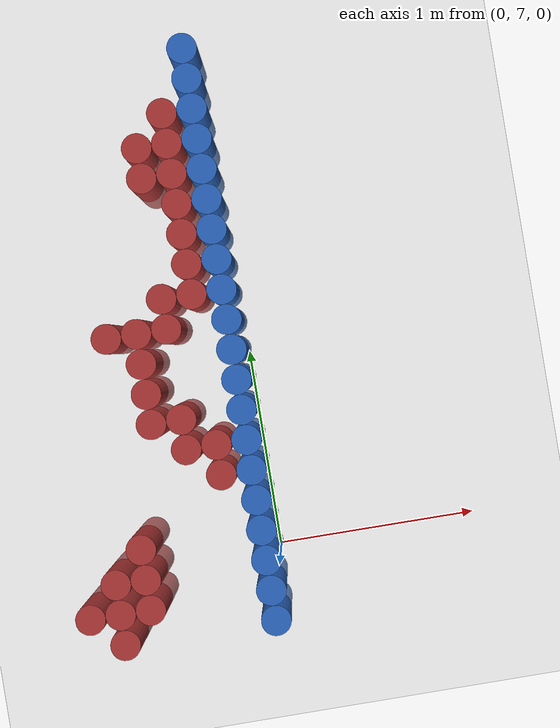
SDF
<sdf version="1.6">
 <world name="default">
  <model name="ground_plane">
   <static>1</static>
   <link name="link">
    <collision name="collision">
     <geometry><plane><normal>0 0 1</normal><size>100 100</size></plane></geometry>
     <surface><friction><ode><mu>100</mu><mu2>50</mu2></ode></friction></surface>
    </collision>
    <visual name="visual">
     <cast_shadows>0</cast_shadows>
     <geometry><plane><normal>0 0 1</normal><size>100 100</size></plane></geometry>
     <material>
      <script><uri>file://media/materials/scripts/gazebo.material</uri><name>Gazebo/Grey</name></script>
     </material>
    </visual>
   </link>
  </model>
  <model name="unit_cylinder_215">
   <static>1</static>
   <pose>-0.975000 6.825000 0.000000 0.000000 0.000000 0.000000</pose>
   <link name="link">
    <inertial>
     <mass>1</mass>
     <inertia><ixx>0.145833</ixx><ixy>0</ixy><ixz>0</ixz><iyy>0.145833</iyy><iyz>0</iyz><izz>0.125</izz></inertia>
    </inertial>
    <collision name="collision">
     <geometry><cylinder><radius>0.075000</radius><length>1</length></cylinder></geometry>
    </collision>
    <visual name="visual">
     <geometry><cylinder><radius>0.075000</radius><length>1</length></cylinder></geometry>
     <material>
      <ambient>0.648000 0.192000 0.192000 1</ambient>
      <diffuse>0.648000 0.192000 0.192000 1</diffuse>
     </material>
     <material>
      <script><name>Gazebo/Grey</name><uri>file://media/materials/scripts/gazebo.material</uri></script>
     </material>
    </visual>
   </link>
  </model>
  <model name="unit_cylinder_216">
   <static>1</static>
   <pose>-0.825000 6.675000 0.000000 0.000000 0.000000 0.000000</pose>
   <link name="link">
    <inertial>
     <mass>1</mass>
     <inertia><ixx>0.145833</ixx><ixy>0</ixy><ixz>0</ixz><iyy>0.145833</iyy><iyz>0</iyz><izz>0.125</izz></inertia>
    </inertial>
    <collision name="collision">
     <geometry><cylinder><radius>0.075000</radius><length>1</length></cylinder></geometry>
    </collision>
    <visual name="visual">
     <geometry><cylinder><radius>0.075000</radius><length>1</length></cylinder></geometry>
     <material>
      <ambient>0.648000 0.192000 0.192000 1</ambient>
      <diffuse>0.648000 0.192000 0.192000 1</diffuse>
     </material>
     <material>
      <script><name>Gazebo/Grey</name><uri>file://media/materials/scripts/gazebo.material</uri></script>
     </material>
    </visual>
   </link>
  </model>
  <model name="unit_cylinder_217">
   <static>1</static>
   <pose>-0.825000 6.825000 0.000000 0.000000 0.000000 0.000000</pose>
   <link name="link">
    <inertial>
     <mass>1</mass>
     <inertia><ixx>0.145833</ixx><ixy>0</ixy><ixz>0</ixz><iyy>0.145833</iyy><iyz>0</iyz><izz>0.125</izz></inertia>
    </inertial>
    <collision name="collision">
     <geometry><cylinder><radius>0.075000</radius><length>1</length></cylinder></geometry>
    </collision>
    <visual name="visual">
     <geometry><cylinder><radius>0.075000</radius><length>1</length></cylinder></geometry>
     <material>
      <ambient>0.648000 0.192000 0.192000 1</ambient>
      <diffuse>0.648000 0.192000 0.192000 1</diffuse>
     </material>
     <material>
      <script><name>Gazebo/Grey</name><uri>file://media/materials/scripts/gazebo.material</uri></script>
     </material>
    </visual>
   </link>
  </model>
  <model name="unit_cylinder_218">
   <static>1</static>
   <pose>-0.825000 6.975000 0.000000 0.000000 0.000000 0.000000</pose>
   <link name="link">
    <inertial>
     <mass>1</mass>
     <inertia><ixx>0.145833</ixx><ixy>0</ixy><ixz>0</ixz><iyy>0.145833</iyy><iyz>0</iyz><izz>0.125</izz></inertia>
    </inertial>
    <collision name="collision">
     <geometry><cylinder><radius>0.075000</radius><length>1</length></cylinder></geometry>
    </collision>
    <visual name="visual">
     <geometry><cylinder><radius>0.075000</radius><length>1</length></cylinder></geometry>
     <material>
      <ambient>0.648000 0.192000 0.192000 1</ambient>
      <diffuse>0.648000 0.192000 0.192000 1</diffuse>
     </material>
     <material>
      <script><name>Gazebo/Grey</name><uri>file://media/materials/scripts/gazebo.material</uri></script>
     </material>
    </visual>
   </link>
  </model>
  <model name="unit_cylinder_219">
   <static>1</static>
   <pose>-0.675000 6.825000 0.000000 0.000000 0.000000 0.000000</pose>
   <link name="link">
    <inertial>
     <mass>1</mass>
     <inertia><ixx>0.145833</ixx><ixy>0</ixy><ixz>0</ixz><iyy>0.145833</iyy><iyz>0</iyz><izz>0.125</izz></inertia>
    </inertial>
    <collision name="collision">
     <geometry><cylinder><radius>0.075000</radius><length>1</length></cylinder></geometry>
    </collision>
    <visual name="visual">
     <geometry><cylinder><radius>0.075000</radius><length>1</length></cylinder></geometry>
     <material>
      <ambient>0.648000 0.192000 0.192000 1</ambient>
      <diffuse>0.648000 0.192000 0.192000 1</diffuse>
     </material>
     <material>
      <script><name>Gazebo/Grey</name><uri>file://media/materials/scripts/gazebo.material</uri></script>
     </material>
    </visual>
   </link>
  </model>
  <model name="unit_cylinder_220">
   <static>1</static>
   <pose>-0.675000 6.975000 0.000000 0.000000 0.000000 0.000000</pose>
   <link name="link">
    <inertial>
     <mass>1</mass>
     <inertia><ixx>0.145833</ixx><ixy>0</ixy><ixz>0</ixz><iyy>0.145833</iyy><iyz>0</iyz><izz>0.125</izz></inertia>
    </inertial>
    <collision name="collision">
     <geometry><cylinder><radius>0.075000</radius><length>1</length></cylinder></geometry>
    </collision>
    <visual name="visual">
     <geometry><cylinder><radius>0.075000</radius><length>1</length></cylinder></geometry>
     <material>
      <ambient>0.648000 0.192000 0.192000 1</ambient>
      <diffuse>0.648000 0.192000 0.192000 1</diffuse>
     </material>
     <material>
      <script><name>Gazebo/Grey</name><uri>file://media/materials/scripts/gazebo.material</uri></script>
     </material>
    </visual>
   </link>
  </model>
  <model name="unit_cylinder_221">
   <static>1</static>
   <pose>-0.675000 7.125000 0.000000 0.000000 0.000000 0.000000</pose>
   <link name="link">
    <inertial>
     <mass>1</mass>
     <inertia><ixx>0.145833</ixx><ixy>0</ixy><ixz>0</ixz><iyy>0.145833</iyy><iyz>0</iyz><izz>0.125</izz></inertia>
    </inertial>
    <collision name="collision">
     <geometry><cylinder><radius>0.075000</radius><length>1</length></cylinder></geometry>
    </collision>
    <visual name="visual">
     <geometry><cylinder><radius>0.075000</radius><length>1</length></cylinder></geometry>
     <material>
      <ambient>0.648000 0.192000 0.192000 1</ambient>
      <diffuse>0.648000 0.192000 0.192000 1</diffuse>
     </material>
     <material>
      <script><name>Gazebo/Grey</name><uri>file://media/materials/scripts/gazebo.material</uri></script>
     </material>
    </visual>
   </link>
  </model>
  <model name="unit_cylinder_222">
   <static>1</static>
   <pose>-0.675000 8.175000 0.000000 0.000000 0.000000 0.000000</pose>
   <link name="link">
    <inertial>
     <mass>1</mass>
     <inertia><ixx>0.145833</ixx><ixy>0</ixy><ixz>0</ixz><iyy>0.145833</iyy><iyz>0</iyz><izz>0.125</izz></inertia>
    </inertial>
    <collision name="collision">
     <geometry><cylinder><radius>0.075000</radius><length>1</length></cylinder></geometry>
    </collision>
    <visual name="visual">
     <geometry><cylinder><radius>0.075000</radius><length>1</length></cylinder></geometry>
     <material>
      <ambient>0.648000 0.192000 0.192000 1</ambient>
      <diffuse>0.648000 0.192000 0.192000 1</diffuse>
     </material>
     <material>
      <script><name>Gazebo/Grey</name><uri>file://media/materials/scripts/gazebo.material</uri></script>
     </material>
    </visual>
   </link>
  </model>
  <model name="unit_cylinder_223">
   <static>1</static>
   <pose>-0.525000 7.725000 0.000000 0.000000 0.000000 0.000000</pose>
   <link name="link">
    <inertial>
     <mass>1</mass>
     <inertia><ixx>0.145833</ixx><ixy>0</ixy><ixz>0</ixz><iyy>0.145833</iyy><iyz>0</iyz><izz>0.125</izz></inertia>
    </inertial>
    <collision name="collision">
     <geometry><cylinder><radius>0.075000</radius><length>1</length></cylinder></geometry>
    </collision>
    <visual name="visual">
     <geometry><cylinder><radius>0.075000</radius><length>1</length></cylinder></geometry>
     <material>
      <ambient>0.648000 0.192000 0.192000 1</ambient>
      <diffuse>0.648000 0.192000 0.192000 1</diffuse>
     </material>
     <material>
      <script><name>Gazebo/Grey</name><uri>file://media/materials/scripts/gazebo.material</uri></script>
     </material>
    </visual>
   </link>
  </model>
  <model name="unit_cylinder_224">
   <static>1</static>
   <pose>-0.525000 7.875000 0.000000 0.000000 0.000000 0.000000</pose>
   <link name="link">
    <inertial>
     <mass>1</mass>
     <inertia><ixx>0.145833</ixx><ixy>0</ixy><ixz>0</ixz><iyy>0.145833</iyy><iyz>0</iyz><izz>0.125</izz></inertia>
    </inertial>
    <collision name="collision">
     <geometry><cylinder><radius>0.075000</radius><length>1</length></cylinder></geometry>
    </collision>
    <visual name="visual">
     <geometry><cylinder><radius>0.075000</radius><length>1</length></cylinder></geometry>
     <material>
      <ambient>0.648000 0.192000 0.192000 1</ambient>
      <diffuse>0.648000 0.192000 0.192000 1</diffuse>
     </material>
     <material>
      <script><name>Gazebo/Grey</name><uri>file://media/materials/scripts/gazebo.material</uri></script>
     </material>
    </visual>
   </link>
  </model>
  <model name="unit_cylinder_225">
   <static>1</static>
   <pose>-0.525000 8.025000 0.000000 0.000000 0.000000 0.000000</pose>
   <link name="link">
    <inertial>
     <mass>1</mass>
     <inertia><ixx>0.145833</ixx><ixy>0</ixy><ixz>0</ixz><iyy>0.145833</iyy><iyz>0</iyz><izz>0.125</izz></inertia>
    </inertial>
    <collision name="collision">
     <geometry><cylinder><radius>0.075000</radius><length>1</length></cylinder></geometry>
    </collision>
    <visual name="visual">
     <geometry><cylinder><radius>0.075000</radius><length>1</length></cylinder></geometry>
     <material>
      <ambient>0.648000 0.192000 0.192000 1</ambient>
      <diffuse>0.648000 0.192000 0.192000 1</diffuse>
     </material>
     <material>
      <script><name>Gazebo/Grey</name><uri>file://media/materials/scripts/gazebo.material</uri></script>
     </material>
    </visual>
   </link>
  </model>
  <model name="unit_cylinder_226">
   <static>1</static>
   <pose>-0.525000 8.175000 0.000000 0.000000 0.000000 0.000000</pose>
   <link name="link">
    <inertial>
     <mass>1</mass>
     <inertia><ixx>0.145833</ixx><ixy>0</ixy><ixz>0</ixz><iyy>0.145833</iyy><iyz>0</iyz><izz>0.125</izz></inertia>
    </inertial>
    <collision name="collision">
     <geometry><cylinder><radius>0.075000</radius><length>1</length></cylinder></geometry>
    </collision>
    <visual name="visual">
     <geometry><cylinder><radius>0.075000</radius><length>1</length></cylinder></geometry>
     <material>
      <ambient>0.648000 0.192000 0.192000 1</ambient>
      <diffuse>0.648000 0.192000 0.192000 1</diffuse>
     </material>
     <material>
      <script><name>Gazebo/Grey</name><uri>file://media/materials/scripts/gazebo.material</uri></script>
     </material>
    </visual>
   </link>
  </model>
  <model name="unit_cylinder_231">
   <static>1</static>
   <pose>-0.375000 7.575000 0.000000 0.000000 0.000000 0.000000</pose>
   <link name="link">
    <inertial>
     <mass>1</mass>
     <inertia><ixx>0.145833</ixx><ixy>0</ixy><ixz>0</ixz><iyy>0.145833</iyy><iyz>0</iyz><izz>0.125</izz></inertia>
    </inertial>
    <collision name="collision">
     <geometry><cylinder><radius>0.075000</radius><length>1</length></cylinder></geometry>
    </collision>
    <visual name="visual">
     <geometry><cylinder><radius>0.075000</radius><length>1</length></cylinder></geometry>
     <material>
      <ambient>0.648000 0.192000 0.192000 1</ambient>
      <diffuse>0.648000 0.192000 0.192000 1</diffuse>
     </material>
     <material>
      <script><name>Gazebo/Grey</name><uri>file://media/materials/scripts/gazebo.material</uri></script>
     </material>
    </visual>
   </link>
  </model>
  <model name="unit_cylinder_232">
   <static>1</static>
   <pose>-0.375000 7.725000 0.000000 0.000000 0.000000 0.000000</pose>
   <link name="link">
    <inertial>
     <mass>1</mass>
     <inertia><ixx>0.145833</ixx><ixy>0</ixy><ixz>0</ixz><iyy>0.145833</iyy><iyz>0</iyz><izz>0.125</izz></inertia>
    </inertial>
    <collision name="collision">
     <geometry><cylinder><radius>0.075000</radius><length>1</length></cylinder></geometry>
    </collision>
    <visual name="visual">
     <geometry><cylinder><radius>0.075000</radius><length>1</length></cylinder></geometry>
     <material>
      <ambient>0.648000 0.192000 0.192000 1</ambient>
      <diffuse>0.648000 0.192000 0.192000 1</diffuse>
     </material>
     <material>
      <script><name>Gazebo/Grey</name><uri>file://media/materials/scripts/gazebo.material</uri></script>
     </material>
    </visual>
   </link>
  </model>
  <model name="unit_cylinder_233">
   <static>1</static>
   <pose>-0.375000 8.175000 0.000000 0.000000 0.000000 0.000000</pose>
   <link name="link">
    <inertial>
     <mass>1</mass>
     <inertia><ixx>0.145833</ixx><ixy>0</ixy><ixz>0</ixz><iyy>0.145833</iyy><iyz>0</iyz><izz>0.125</izz></inertia>
    </inertial>
    <collision name="collision">
     <geometry><cylinder><radius>0.075000</radius><length>1</length></cylinder></geometry>
    </collision>
    <visual name="visual">
     <geometry><cylinder><radius>0.075000</radius><length>1</length></cylinder></geometry>
     <material>
      <ambient>0.648000 0.192000 0.192000 1</ambient>
      <diffuse>0.648000 0.192000 0.192000 1</diffuse>
     </material>
     <material>
      <script><name>Gazebo/Grey</name><uri>file://media/materials/scripts/gazebo.material</uri></script>
     </material>
    </visual>
   </link>
  </model>
  <model name="unit_cylinder_234">
   <static>1</static>
   <pose>-0.375000 8.325000 0.000000 0.000000 0.000000 0.000000</pose>
   <link name="link">
    <inertial>
     <mass>1</mass>
     <inertia><ixx>0.145833</ixx><ixy>0</ixy><ixz>0</ixz><iyy>0.145833</iyy><iyz>0</iyz><izz>0.125</izz></inertia>
    </inertial>
    <collision name="collision">
     <geometry><cylinder><radius>0.075000</radius><length>1</length></cylinder></geometry>
    </collision>
    <visual name="visual">
     <geometry><cylinder><radius>0.075000</radius><length>1</length></cylinder></geometry>
     <material>
      <ambient>0.648000 0.192000 0.192000 1</ambient>
      <diffuse>0.648000 0.192000 0.192000 1</diffuse>
     </material>
     <material>
      <script><name>Gazebo/Grey</name><uri>file://media/materials/scripts/gazebo.material</uri></script>
     </material>
    </visual>
   </link>
  </model>
  <model name="unit_cylinder_235">
   <static>1</static>
   <pose>-0.375000 8.925000 0.000000 0.000000 0.000000 0.000000</pose>
   <link name="link">
    <inertial>
     <mass>1</mass>
     <inertia><ixx>0.145833</ixx><ixy>0</ixy><ixz>0</ixz><iyy>0.145833</iyy><iyz>0</iyz><izz>0.125</izz></inertia>
    </inertial>
    <collision name="collision">
     <geometry><cylinder><radius>0.075000</radius><length>1</length></cylinder></geometry>
    </collision>
    <visual name="visual">
     <geometry><cylinder><radius>0.075000</radius><length>1</length></cylinder></geometry>
     <material>
      <ambient>0.648000 0.192000 0.192000 1</ambient>
      <diffuse>0.648000 0.192000 0.192000 1</diffuse>
     </material>
     <material>
      <script><name>Gazebo/Grey</name><uri>file://media/materials/scripts/gazebo.material</uri></script>
     </material>
    </visual>
   </link>
  </model>
  <model name="unit_cylinder_236">
   <static>1</static>
   <pose>-0.375000 9.075000 0.000000 0.000000 0.000000 0.000000</pose>
   <link name="link">
    <inertial>
     <mass>1</mass>
     <inertia><ixx>0.145833</ixx><ixy>0</ixy><ixz>0</ixz><iyy>0.145833</iyy><iyz>0</iyz><izz>0.125</izz></inertia>
    </inertial>
    <collision name="collision">
     <geometry><cylinder><radius>0.075000</radius><length>1</length></cylinder></geometry>
    </collision>
    <visual name="visual">
     <geometry><cylinder><radius>0.075000</radius><length>1</length></cylinder></geometry>
     <material>
      <ambient>0.648000 0.192000 0.192000 1</ambient>
      <diffuse>0.648000 0.192000 0.192000 1</diffuse>
     </material>
     <material>
      <script><name>Gazebo/Grey</name><uri>file://media/materials/scripts/gazebo.material</uri></script>
     </material>
    </visual>
   </link>
  </model>
  <model name="unit_cylinder_244">
   <static>1</static>
   <pose>-0.225000 7.425000 0.000000 0.000000 0.000000 0.000000</pose>
   <link name="link">
    <inertial>
     <mass>1</mass>
     <inertia><ixx>0.145833</ixx><ixy>0</ixy><ixz>0</ixz><iyy>0.145833</iyy><iyz>0</iyz><izz>0.125</izz></inertia>
    </inertial>
    <collision name="collision">
     <geometry><cylinder><radius>0.075000</radius><length>1</length></cylinder></geometry>
    </collision>
    <visual name="visual">
     <geometry><cylinder><radius>0.075000</radius><length>1</length></cylinder></geometry>
     <material>
      <ambient>0.648000 0.192000 0.192000 1</ambient>
      <diffuse>0.648000 0.192000 0.192000 1</diffuse>
     </material>
     <material>
      <script><name>Gazebo/Grey</name><uri>file://media/materials/scripts/gazebo.material</uri></script>
     </material>
    </visual>
   </link>
  </model>
  <model name="unit_cylinder_245">
   <static>1</static>
   <pose>-0.225000 7.575000 0.000000 0.000000 0.000000 0.000000</pose>
   <link name="link">
    <inertial>
     <mass>1</mass>
     <inertia><ixx>0.145833</ixx><ixy>0</ixy><ixz>0</ixz><iyy>0.145833</iyy><iyz>0</iyz><izz>0.125</izz></inertia>
    </inertial>
    <collision name="collision">
     <geometry><cylinder><radius>0.075000</radius><length>1</length></cylinder></geometry>
    </collision>
    <visual name="visual">
     <geometry><cylinder><radius>0.075000</radius><length>1</length></cylinder></geometry>
     <material>
      <ambient>0.648000 0.192000 0.192000 1</ambient>
      <diffuse>0.648000 0.192000 0.192000 1</diffuse>
     </material>
     <material>
      <script><name>Gazebo/Grey</name><uri>file://media/materials/scripts/gazebo.material</uri></script>
     </material>
    </visual>
   </link>
  </model>
  <model name="unit_cylinder_246">
   <static>1</static>
   <pose>-0.225000 8.325000 0.000000 0.000000 0.000000 0.000000</pose>
   <link name="link">
    <inertial>
     <mass>1</mass>
     <inertia><ixx>0.145833</ixx><ixy>0</ixy><ixz>0</ixz><iyy>0.145833</iyy><iyz>0</iyz><izz>0.125</izz></inertia>
    </inertial>
    <collision name="collision">
     <geometry><cylinder><radius>0.075000</radius><length>1</length></cylinder></geometry>
    </collision>
    <visual name="visual">
     <geometry><cylinder><radius>0.075000</radius><length>1</length></cylinder></geometry>
     <material>
      <ambient>0.648000 0.192000 0.192000 1</ambient>
      <diffuse>0.648000 0.192000 0.192000 1</diffuse>
     </material>
     <material>
      <script><name>Gazebo/Grey</name><uri>file://media/materials/scripts/gazebo.material</uri></script>
     </material>
    </visual>
   </link>
  </model>
  <model name="unit_cylinder_247">
   <static>1</static>
   <pose>-0.225000 8.475000 0.000000 0.000000 0.000000 0.000000</pose>
   <link name="link">
    <inertial>
     <mass>1</mass>
     <inertia><ixx>0.145833</ixx><ixy>0</ixy><ixz>0</ixz><iyy>0.145833</iyy><iyz>0</iyz><izz>0.125</izz></inertia>
    </inertial>
    <collision name="collision">
     <geometry><cylinder><radius>0.075000</radius><length>1</length></cylinder></geometry>
    </collision>
    <visual name="visual">
     <geometry><cylinder><radius>0.075000</radius><length>1</length></cylinder></geometry>
     <material>
      <ambient>0.648000 0.192000 0.192000 1</ambient>
      <diffuse>0.648000 0.192000 0.192000 1</diffuse>
     </material>
     <material>
      <script><name>Gazebo/Grey</name><uri>file://media/materials/scripts/gazebo.material</uri></script>
     </material>
    </visual>
   </link>
  </model>
  <model name="unit_cylinder_248">
   <static>1</static>
   <pose>-0.225000 8.625000 0.000000 0.000000 0.000000 0.000000</pose>
   <link name="link">
    <inertial>
     <mass>1</mass>
     <inertia><ixx>0.145833</ixx><ixy>0</ixy><ixz>0</ixz><iyy>0.145833</iyy><iyz>0</iyz><izz>0.125</izz></inertia>
    </inertial>
    <collision name="collision">
     <geometry><cylinder><radius>0.075000</radius><length>1</length></cylinder></geometry>
    </collision>
    <visual name="visual">
     <geometry><cylinder><radius>0.075000</radius><length>1</length></cylinder></geometry>
     <material>
      <ambient>0.648000 0.192000 0.192000 1</ambient>
      <diffuse>0.648000 0.192000 0.192000 1</diffuse>
     </material>
     <material>
      <script><name>Gazebo/Grey</name><uri>file://media/materials/scripts/gazebo.material</uri></script>
     </material>
    </visual>
   </link>
  </model>
  <model name="unit_cylinder_249">
   <static>1</static>
   <pose>-0.225000 8.775000 0.000000 0.000000 0.000000 0.000000</pose>
   <link name="link">
    <inertial>
     <mass>1</mass>
     <inertia><ixx>0.145833</ixx><ixy>0</ixy><ixz>0</ixz><iyy>0.145833</iyy><iyz>0</iyz><izz>0.125</izz></inertia>
    </inertial>
    <collision name="collision">
     <geometry><cylinder><radius>0.075000</radius><length>1</length></cylinder></geometry>
    </collision>
    <visual name="visual">
     <geometry><cylinder><radius>0.075000</radius><length>1</length></cylinder></geometry>
     <material>
      <ambient>0.648000 0.192000 0.192000 1</ambient>
      <diffuse>0.648000 0.192000 0.192000 1</diffuse>
     </material>
     <material>
      <script><name>Gazebo/Grey</name><uri>file://media/materials/scripts/gazebo.material</uri></script>
     </material>
    </visual>
   </link>
  </model>
  <model name="unit_cylinder_250">
   <static>1</static>
   <pose>-0.225000 8.925000 0.000000 0.000000 0.000000 0.000000</pose>
   <link name="link">
    <inertial>
     <mass>1</mass>
     <inertia><ixx>0.145833</ixx><ixy>0</ixy><ixz>0</ixz><iyy>0.145833</iyy><iyz>0</iyz><izz>0.125</izz></inertia>
    </inertial>
    <collision name="collision">
     <geometry><cylinder><radius>0.075000</radius><length>1</length></cylinder></geometry>
    </collision>
    <visual name="visual">
     <geometry><cylinder><radius>0.075000</radius><length>1</length></cylinder></geometry>
     <material>
      <ambient>0.648000 0.192000 0.192000 1</ambient>
      <diffuse>0.648000 0.192000 0.192000 1</diffuse>
     </material>
     <material>
      <script><name>Gazebo/Grey</name><uri>file://media/materials/scripts/gazebo.material</uri></script>
     </material>
    </visual>
   </link>
  </model>
  <model name="unit_cylinder_251">
   <static>1</static>
   <pose>-0.225000 9.075000 0.000000 0.000000 0.000000 0.000000</pose>
   <link name="link">
    <inertial>
     <mass>1</mass>
     <inertia><ixx>0.145833</ixx><ixy>0</ixy><ixz>0</ixz><iyy>0.145833</iyy><iyz>0</iyz><izz>0.125</izz></inertia>
    </inertial>
    <collision name="collision">
     <geometry><cylinder><radius>0.075000</radius><length>1</length></cylinder></geometry>
    </collision>
    <visual name="visual">
     <geometry><cylinder><radius>0.075000</radius><length>1</length></cylinder></geometry>
     <material>
      <ambient>0.648000 0.192000 0.192000 1</ambient>
      <diffuse>0.648000 0.192000 0.192000 1</diffuse>
     </material>
     <material>
      <script><name>Gazebo/Grey</name><uri>file://media/materials/scripts/gazebo.material</uri></script>
     </material>
    </visual>
   </link>
  </model>
  <model name="unit_cylinder_252">
   <static>1</static>
   <pose>-0.225000 9.225000 0.000000 0.000000 0.000000 0.000000</pose>
   <link name="link">
    <inertial>
     <mass>1</mass>
     <inertia><ixx>0.145833</ixx><ixy>0</ixy><ixz>0</ixz><iyy>0.145833</iyy><iyz>0</iyz><izz>0.125</izz></inertia>
    </inertial>
    <collision name="collision">
     <geometry><cylinder><radius>0.075000</radius><length>1</length></cylinder></geometry>
    </collision>
    <visual name="visual">
     <geometry><cylinder><radius>0.075000</radius><length>1</length></cylinder></geometry>
     <material>
      <ambient>0.648000 0.192000 0.192000 1</ambient>
      <diffuse>0.648000 0.192000 0.192000 1</diffuse>
     </material>
     <material>
      <script><name>Gazebo/Grey</name><uri>file://media/materials/scripts/gazebo.material</uri></script>
     </material>
    </visual>
   </link>
  </model>
  <model name="unit_cylinder_263">
   <static>1</static>
   <pose>-0.075000 6.675000 0.000000 0.000000 0.000000 0.000000</pose>
   <link name="link">
    <inertial>
     <mass>1</mass>
     <inertia><ixx>0.145833</ixx><ixy>0</ixy><ixz>0</ixz><iyy>0.145833</iyy><iyz>0</iyz><izz>0.125</izz></inertia>
    </inertial>
    <collision name="collision">
     <geometry><cylinder><radius>0.075000</radius><length>1</length></cylinder></geometry>
    </collision>
    <visual name="visual">
     <geometry><cylinder><radius>0.075000</radius><length>1</length></cylinder></geometry>
     <material>
      <ambient>0.152000 0.379000 0.720000 1</ambient>
      <diffuse>0.152000 0.379000 0.720000 1</diffuse>
     </material>
     <material>
      <script><name>Gazebo/Grey</name><uri>file://media/materials/scripts/gazebo.material</uri></script>
     </material>
    </visual>
   </link>
  </model>
  <model name="unit_cylinder_264">
   <static>1</static>
   <pose>-0.075000 6.825000 0.000000 0.000000 0.000000 0.000000</pose>
   <link name="link">
    <inertial>
     <mass>1</mass>
     <inertia><ixx>0.145833</ixx><ixy>0</ixy><ixz>0</ixz><iyy>0.145833</iyy><iyz>0</iyz><izz>0.125</izz></inertia>
    </inertial>
    <collision name="collision">
     <geometry><cylinder><radius>0.075000</radius><length>1</length></cylinder></geometry>
    </collision>
    <visual name="visual">
     <geometry><cylinder><radius>0.075000</radius><length>1</length></cylinder></geometry>
     <material>
      <ambient>0.152000 0.379000 0.720000 1</ambient>
      <diffuse>0.152000 0.379000 0.720000 1</diffuse>
     </material>
     <material>
      <script><name>Gazebo/Grey</name><uri>file://media/materials/scripts/gazebo.material</uri></script>
     </material>
    </visual>
   </link>
  </model>
  <model name="unit_cylinder_265">
   <static>1</static>
   <pose>-0.075000 6.975000 0.000000 0.000000 0.000000 0.000000</pose>
   <link name="link">
    <inertial>
     <mass>1</mass>
     <inertia><ixx>0.145833</ixx><ixy>0</ixy><ixz>0</ixz><iyy>0.145833</iyy><iyz>0</iyz><izz>0.125</izz></inertia>
    </inertial>
    <collision name="collision">
     <geometry><cylinder><radius>0.075000</radius><length>1</length></cylinder></geometry>
    </collision>
    <visual name="visual">
     <geometry><cylinder><radius>0.075000</radius><length>1</length></cylinder></geometry>
     <material>
      <ambient>0.152000 0.379000 0.720000 1</ambient>
      <diffuse>0.152000 0.379000 0.720000 1</diffuse>
     </material>
     <material>
      <script><name>Gazebo/Grey</name><uri>file://media/materials/scripts/gazebo.material</uri></script>
     </material>
    </visual>
   </link>
  </model>
  <model name="unit_cylinder_266">
   <static>1</static>
   <pose>-0.075000 7.125000 0.000000 0.000000 0.000000 0.000000</pose>
   <link name="link">
    <inertial>
     <mass>1</mass>
     <inertia><ixx>0.145833</ixx><ixy>0</ixy><ixz>0</ixz><iyy>0.145833</iyy><iyz>0</iyz><izz>0.125</izz></inertia>
    </inertial>
    <collision name="collision">
     <geometry><cylinder><radius>0.075000</radius><length>1</length></cylinder></geometry>
    </collision>
    <visual name="visual">
     <geometry><cylinder><radius>0.075000</radius><length>1</length></cylinder></geometry>
     <material>
      <ambient>0.152000 0.379000 0.720000 1</ambient>
      <diffuse>0.152000 0.379000 0.720000 1</diffuse>
     </material>
     <material>
      <script><name>Gazebo/Grey</name><uri>file://media/materials/scripts/gazebo.material</uri></script>
     </material>
    </visual>
   </link>
  </model>
  <model name="unit_cylinder_267">
   <static>1</static>
   <pose>-0.075000 7.275000 0.000000 0.000000 0.000000 0.000000</pose>
   <link name="link">
    <inertial>
     <mass>1</mass>
     <inertia><ixx>0.145833</ixx><ixy>0</ixy><ixz>0</ixz><iyy>0.145833</iyy><iyz>0</iyz><izz>0.125</izz></inertia>
    </inertial>
    <collision name="collision">
     <geometry><cylinder><radius>0.075000</radius><length>1</length></cylinder></geometry>
    </collision>
    <visual name="visual">
     <geometry><cylinder><radius>0.075000</radius><length>1</length></cylinder></geometry>
     <material>
      <ambient>0.152000 0.379000 0.720000 1</ambient>
      <diffuse>0.152000 0.379000 0.720000 1</diffuse>
     </material>
     <material>
      <script><name>Gazebo/Grey</name><uri>file://media/materials/scripts/gazebo.material</uri></script>
     </material>
    </visual>
   </link>
  </model>
  <model name="unit_cylinder_268">
   <static>1</static>
   <pose>-0.075000 7.425000 0.000000 0.000000 0.000000 0.000000</pose>
   <link name="link">
    <inertial>
     <mass>1</mass>
     <inertia><ixx>0.145833</ixx><ixy>0</ixy><ixz>0</ixz><iyy>0.145833</iyy><iyz>0</iyz><izz>0.125</izz></inertia>
    </inertial>
    <collision name="collision">
     <geometry><cylinder><radius>0.075000</radius><length>1</length></cylinder></geometry>
    </collision>
    <visual name="visual">
     <geometry><cylinder><radius>0.075000</radius><length>1</length></cylinder></geometry>
     <material>
      <ambient>0.152000 0.379000 0.720000 1</ambient>
      <diffuse>0.152000 0.379000 0.720000 1</diffuse>
     </material>
     <material>
      <script><name>Gazebo/Grey</name><uri>file://media/materials/scripts/gazebo.material</uri></script>
     </material>
    </visual>
   </link>
  </model>
  <model name="unit_cylinder_269">
   <static>1</static>
   <pose>-0.075000 7.575000 0.000000 0.000000 0.000000 0.000000</pose>
   <link name="link">
    <inertial>
     <mass>1</mass>
     <inertia><ixx>0.145833</ixx><ixy>0</ixy><ixz>0</ixz><iyy>0.145833</iyy><iyz>0</iyz><izz>0.125</izz></inertia>
    </inertial>
    <collision name="collision">
     <geometry><cylinder><radius>0.075000</radius><length>1</length></cylinder></geometry>
    </collision>
    <visual name="visual">
     <geometry><cylinder><radius>0.075000</radius><length>1</length></cylinder></geometry>
     <material>
      <ambient>0.152000 0.379000 0.720000 1</ambient>
      <diffuse>0.152000 0.379000 0.720000 1</diffuse>
     </material>
     <material>
      <script><name>Gazebo/Grey</name><uri>file://media/materials/scripts/gazebo.material</uri></script>
     </material>
    </visual>
   </link>
  </model>
  <model name="unit_cylinder_270">
   <static>1</static>
   <pose>-0.075000 7.725000 0.000000 0.000000 0.000000 0.000000</pose>
   <link name="link">
    <inertial>
     <mass>1</mass>
     <inertia><ixx>0.145833</ixx><ixy>0</ixy><ixz>0</ixz><iyy>0.145833</iyy><iyz>0</iyz><izz>0.125</izz></inertia>
    </inertial>
    <collision name="collision">
     <geometry><cylinder><radius>0.075000</radius><length>1</length></cylinder></geometry>
    </collision>
    <visual name="visual">
     <geometry><cylinder><radius>0.075000</radius><length>1</length></cylinder></geometry>
     <material>
      <ambient>0.152000 0.379000 0.720000 1</ambient>
      <diffuse>0.152000 0.379000 0.720000 1</diffuse>
     </material>
     <material>
      <script><name>Gazebo/Grey</name><uri>file://media/materials/scripts/gazebo.material</uri></script>
     </material>
    </visual>
   </link>
  </model>
  <model name="unit_cylinder_271">
   <static>1</static>
   <pose>-0.075000 7.875000 0.000000 0.000000 0.000000 0.000000</pose>
   <link name="link">
    <inertial>
     <mass>1</mass>
     <inertia><ixx>0.145833</ixx><ixy>0</ixy><ixz>0</ixz><iyy>0.145833</iyy><iyz>0</iyz><izz>0.125</izz></inertia>
    </inertial>
    <collision name="collision">
     <geometry><cylinder><radius>0.075000</radius><length>1</length></cylinder></geometry>
    </collision>
    <visual name="visual">
     <geometry><cylinder><radius>0.075000</radius><length>1</length></cylinder></geometry>
     <material>
      <ambient>0.152000 0.379000 0.720000 1</ambient>
      <diffuse>0.152000 0.379000 0.720000 1</diffuse>
     </material>
     <material>
      <script><name>Gazebo/Grey</name><uri>file://media/materials/scripts/gazebo.material</uri></script>
     </material>
    </visual>
   </link>
  </model>
  <model name="unit_cylinder_272">
   <static>1</static>
   <pose>-0.075000 8.025000 0.000000 0.000000 0.000000 0.000000</pose>
   <link name="link">
    <inertial>
     <mass>1</mass>
     <inertia><ixx>0.145833</ixx><ixy>0</ixy><ixz>0</ixz><iyy>0.145833</iyy><iyz>0</iyz><izz>0.125</izz></inertia>
    </inertial>
    <collision name="collision">
     <geometry><cylinder><radius>0.075000</radius><length>1</length></cylinder></geometry>
    </collision>
    <visual name="visual">
     <geometry><cylinder><radius>0.075000</radius><length>1</length></cylinder></geometry>
     <material>
      <ambient>0.152000 0.379000 0.720000 1</ambient>
      <diffuse>0.152000 0.379000 0.720000 1</diffuse>
     </material>
     <material>
      <script><name>Gazebo/Grey</name><uri>file://media/materials/scripts/gazebo.material</uri></script>
     </material>
    </visual>
   </link>
  </model>
  <model name="unit_cylinder_273">
   <static>1</static>
   <pose>-0.075000 8.175000 0.000000 0.000000 0.000000 0.000000</pose>
   <link name="link">
    <inertial>
     <mass>1</mass>
     <inertia><ixx>0.145833</ixx><ixy>0</ixy><ixz>0</ixz><iyy>0.145833</iyy><iyz>0</iyz><izz>0.125</izz></inertia>
    </inertial>
    <collision name="collision">
     <geometry><cylinder><radius>0.075000</radius><length>1</length></cylinder></geometry>
    </collision>
    <visual name="visual">
     <geometry><cylinder><radius>0.075000</radius><length>1</length></cylinder></geometry>
     <material>
      <ambient>0.152000 0.379000 0.720000 1</ambient>
      <diffuse>0.152000 0.379000 0.720000 1</diffuse>
     </material>
     <material>
      <script><name>Gazebo/Grey</name><uri>file://media/materials/scripts/gazebo.material</uri></script>
     </material>
    </visual>
   </link>
  </model>
  <model name="unit_cylinder_274">
   <static>1</static>
   <pose>-0.075000 8.325000 0.000000 0.000000 0.000000 0.000000</pose>
   <link name="link">
    <inertial>
     <mass>1</mass>
     <inertia><ixx>0.145833</ixx><ixy>0</ixy><ixz>0</ixz><iyy>0.145833</iyy><iyz>0</iyz><izz>0.125</izz></inertia>
    </inertial>
    <collision name="collision">
     <geometry><cylinder><radius>0.075000</radius><length>1</length></cylinder></geometry>
    </collision>
    <visual name="visual">
     <geometry><cylinder><radius>0.075000</radius><length>1</length></cylinder></geometry>
     <material>
      <ambient>0.152000 0.379000 0.720000 1</ambient>
      <diffuse>0.152000 0.379000 0.720000 1</diffuse>
     </material>
     <material>
      <script><name>Gazebo/Grey</name><uri>file://media/materials/scripts/gazebo.material</uri></script>
     </material>
    </visual>
   </link>
  </model>
  <model name="unit_cylinder_275">
   <static>1</static>
   <pose>-0.075000 8.475000 0.000000 0.000000 0.000000 0.000000</pose>
   <link name="link">
    <inertial>
     <mass>1</mass>
     <inertia><ixx>0.145833</ixx><ixy>0</ixy><ixz>0</ixz><iyy>0.145833</iyy><iyz>0</iyz><izz>0.125</izz></inertia>
    </inertial>
    <collision name="collision">
     <geometry><cylinder><radius>0.075000</radius><length>1</length></cylinder></geometry>
    </collision>
    <visual name="visual">
     <geometry><cylinder><radius>0.075000</radius><length>1</length></cylinder></geometry>
     <material>
      <ambient>0.152000 0.379000 0.720000 1</ambient>
      <diffuse>0.152000 0.379000 0.720000 1</diffuse>
     </material>
     <material>
      <script><name>Gazebo/Grey</name><uri>file://media/materials/scripts/gazebo.material</uri></script>
     </material>
    </visual>
   </link>
  </model>
  <model name="unit_cylinder_276">
   <static>1</static>
   <pose>-0.075000 8.625000 0.000000 0.000000 0.000000 0.000000</pose>
   <link name="link">
    <inertial>
     <mass>1</mass>
     <inertia><ixx>0.145833</ixx><ixy>0</ixy><ixz>0</ixz><iyy>0.145833</iyy><iyz>0</iyz><izz>0.125</izz></inertia>
    </inertial>
    <collision name="collision">
     <geometry><cylinder><radius>0.075000</radius><length>1</length></cylinder></geometry>
    </collision>
    <visual name="visual">
     <geometry><cylinder><radius>0.075000</radius><length>1</length></cylinder></geometry>
     <material>
      <ambient>0.152000 0.379000 0.720000 1</ambient>
      <diffuse>0.152000 0.379000 0.720000 1</diffuse>
     </material>
     <material>
      <script><name>Gazebo/Grey</name><uri>file://media/materials/scripts/gazebo.material</uri></script>
     </material>
    </visual>
   </link>
  </model>
  <model name="unit_cylinder_277">
   <static>1</static>
   <pose>-0.075000 8.775000 0.000000 0.000000 0.000000 0.000000</pose>
   <link name="link">
    <inertial>
     <mass>1</mass>
     <inertia><ixx>0.145833</ixx><ixy>0</ixy><ixz>0</ixz><iyy>0.145833</iyy><iyz>0</iyz><izz>0.125</izz></inertia>
    </inertial>
    <collision name="collision">
     <geometry><cylinder><radius>0.075000</radius><length>1</length></cylinder></geometry>
    </collision>
    <visual name="visual">
     <geometry><cylinder><radius>0.075000</radius><length>1</length></cylinder></geometry>
     <material>
      <ambient>0.152000 0.379000 0.720000 1</ambient>
      <diffuse>0.152000 0.379000 0.720000 1</diffuse>
     </material>
     <material>
      <script><name>Gazebo/Grey</name><uri>file://media/materials/scripts/gazebo.material</uri></script>
     </material>
    </visual>
   </link>
  </model>
  <model name="unit_cylinder_278">
   <static>1</static>
   <pose>-0.075000 8.925000 0.000000 0.000000 0.000000 0.000000</pose>
   <link name="link">
    <inertial>
     <mass>1</mass>
     <inertia><ixx>0.145833</ixx><ixy>0</ixy><ixz>0</ixz><iyy>0.145833</iyy><iyz>0</iyz><izz>0.125</izz></inertia>
    </inertial>
    <collision name="collision">
     <geometry><cylinder><radius>0.075000</radius><length>1</length></cylinder></geometry>
    </collision>
    <visual name="visual">
     <geometry><cylinder><radius>0.075000</radius><length>1</length></cylinder></geometry>
     <material>
      <ambient>0.152000 0.379000 0.720000 1</ambient>
      <diffuse>0.152000 0.379000 0.720000 1</diffuse>
     </material>
     <material>
      <script><name>Gazebo/Grey</name><uri>file://media/materials/scripts/gazebo.material</uri></script>
     </material>
    </visual>
   </link>
  </model>
  <model name="unit_cylinder_279">
   <static>1</static>
   <pose>-0.075000 9.075000 0.000000 0.000000 0.000000 0.000000</pose>
   <link name="link">
    <inertial>
     <mass>1</mass>
     <inertia><ixx>0.145833</ixx><ixy>0</ixy><ixz>0</ixz><iyy>0.145833</iyy><iyz>0</iyz><izz>0.125</izz></inertia>
    </inertial>
    <collision name="collision">
     <geometry><cylinder><radius>0.075000</radius><length>1</length></cylinder></geometry>
    </collision>
    <visual name="visual">
     <geometry><cylinder><radius>0.075000</radius><length>1</length></cylinder></geometry>
     <material>
      <ambient>0.152000 0.379000 0.720000 1</ambient>
      <diffuse>0.152000 0.379000 0.720000 1</diffuse>
     </material>
     <material>
      <script><name>Gazebo/Grey</name><uri>file://media/materials/scripts/gazebo.material</uri></script>
     </material>
    </visual>
   </link>
  </model>
  <model name="unit_cylinder_280">
   <static>1</static>
   <pose>-0.075000 9.225000 0.000000 0.000000 0.000000 0.000000</pose>
   <link name="link">
    <inertial>
     <mass>1</mass>
     <inertia><ixx>0.145833</ixx><ixy>0</ixy><ixz>0</ixz><iyy>0.145833</iyy><iyz>0</iyz><izz>0.125</izz></inertia>
    </inertial>
    <collision name="collision">
     <geometry><cylinder><radius>0.075000</radius><length>1</length></cylinder></geometry>
    </collision>
    <visual name="visual">
     <geometry><cylinder><radius>0.075000</radius><length>1</length></cylinder></geometry>
     <material>
      <ambient>0.152000 0.379000 0.720000 1</ambient>
      <diffuse>0.152000 0.379000 0.720000 1</diffuse>
     </material>
     <material>
      <script><name>Gazebo/Grey</name><uri>file://media/materials/scripts/gazebo.material</uri></script>
     </material>
    </visual>
   </link>
  </model>
  <model name="unit_cylinder_281">
   <static>1</static>
   <pose>-0.075000 9.375000 0.000000 0.000000 0.000000 0.000000</pose>
   <link name="link">
    <inertial>
     <mass>1</mass>
     <inertia><ixx>0.145833</ixx><ixy>0</ixy><ixz>0</ixz><iyy>0.145833</iyy><iyz>0</iyz><izz>0.125</izz></inertia>
    </inertial>
    <collision name="collision">
     <geometry><cylinder><radius>0.075000</radius><length>1</length></cylinder></geometry>
    </collision>
    <visual name="visual">
     <geometry><cylinder><radius>0.075000</radius><length>1</length></cylinder></geometry>
     <material>
      <ambient>0.152000 0.379000 0.720000 1</ambient>
      <diffuse>0.152000 0.379000 0.720000 1</diffuse>
     </material>
     <material>
      <script><name>Gazebo/Grey</name><uri>file://media/materials/scripts/gazebo.material</uri></script>
     </material>
    </visual>
   </link>
  </model>
  <model name="unit_cylinder_282">
   <static>1</static>
   <pose>-0.075000 9.525000 0.000000 0.000000 0.000000 0.000000</pose>
   <link name="link">
    <inertial>
     <mass>1</mass>
     <inertia><ixx>0.145833</ixx><ixy>0</ixy><ixz>0</ixz><iyy>0.145833</iyy><iyz>0</iyz><izz>0.125</izz></inertia>
    </inertial>
    <collision name="collision">
     <geometry><cylinder><radius>0.075000</radius><length>1</length></cylinder></geometry>
    </collision>
    <visual name="visual">
     <geometry><cylinder><radius>0.075000</radius><length>1</length></cylinder></geometry>
     <material>
      <ambient>0.152000 0.379000 0.720000 1</ambient>
      <diffuse>0.152000 0.379000 0.720000 1</diffuse>
     </material>
     <material>
      <script><name>Gazebo/Grey</name><uri>file://media/materials/scripts/gazebo.material</uri></script>
     </material>
    </visual>
   </link>
  </model>
 </world>
</sdf>
